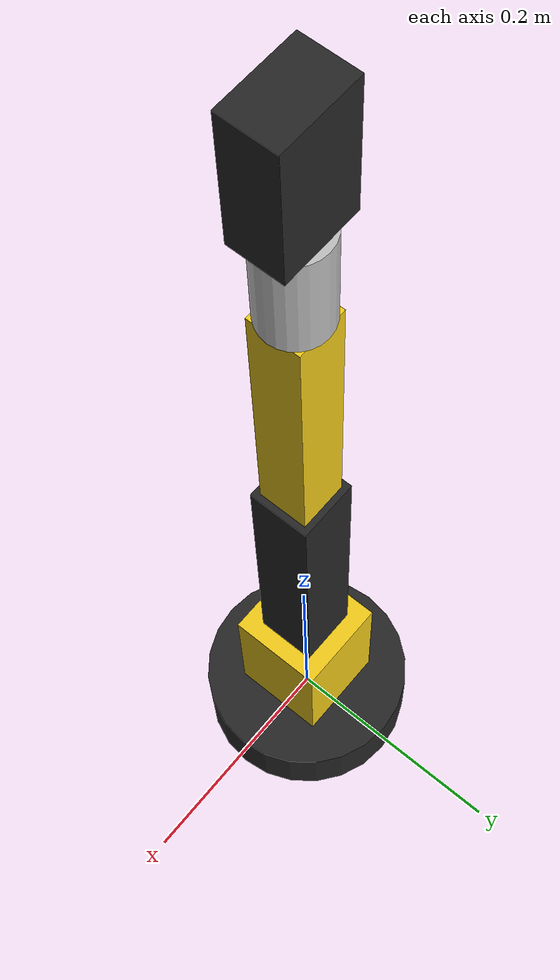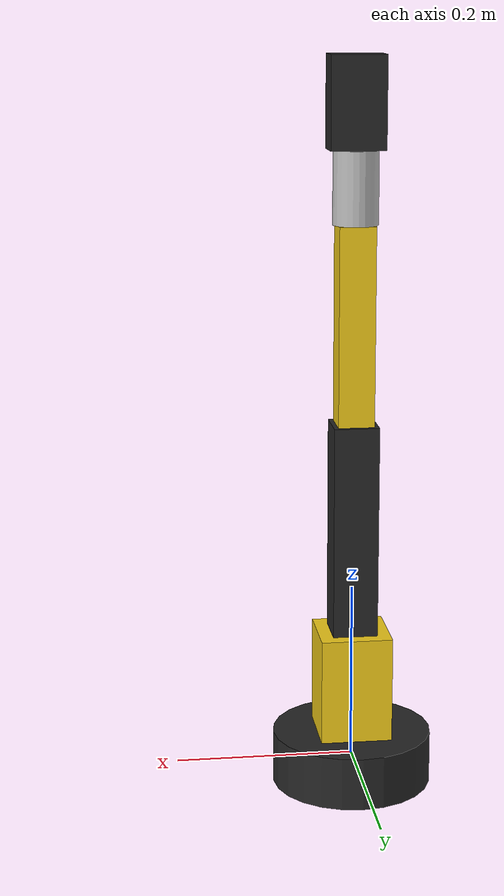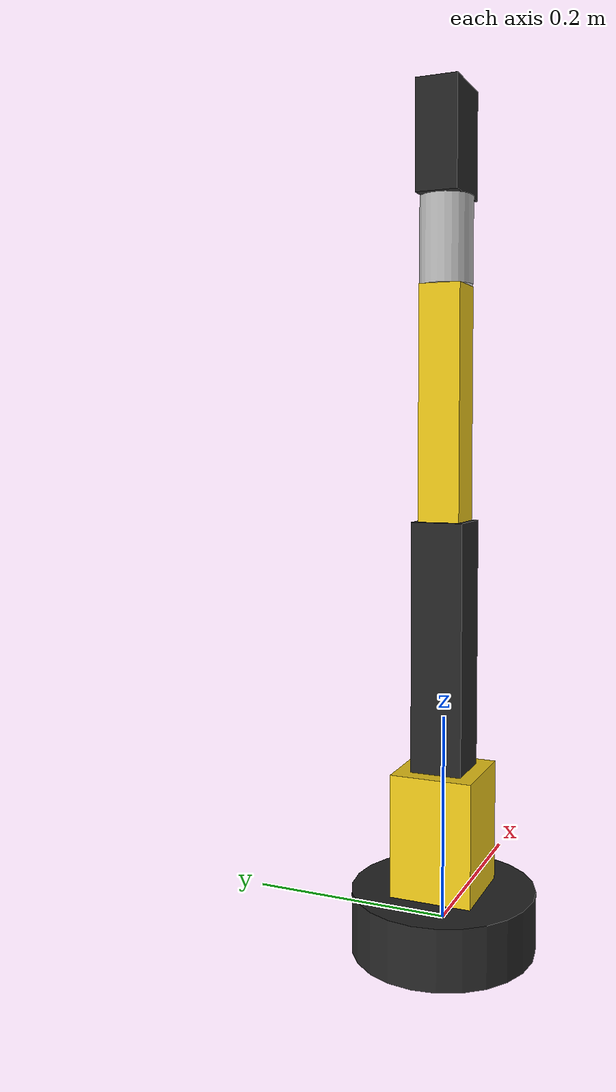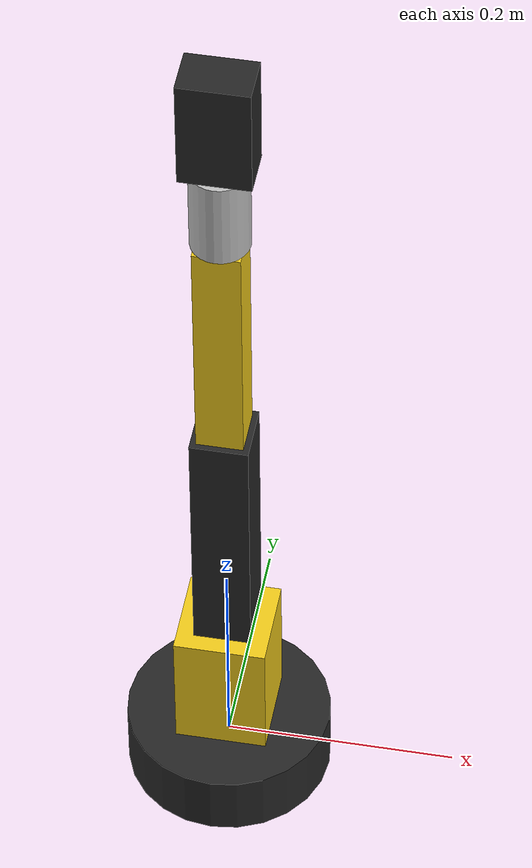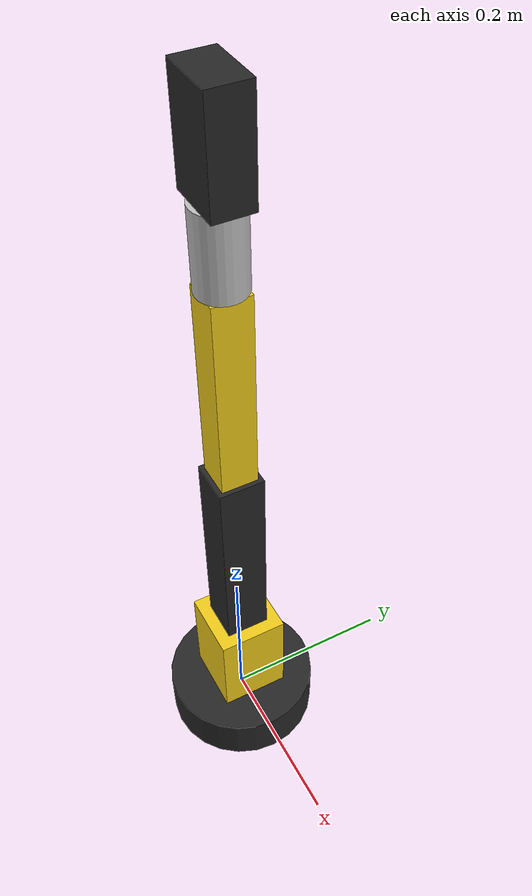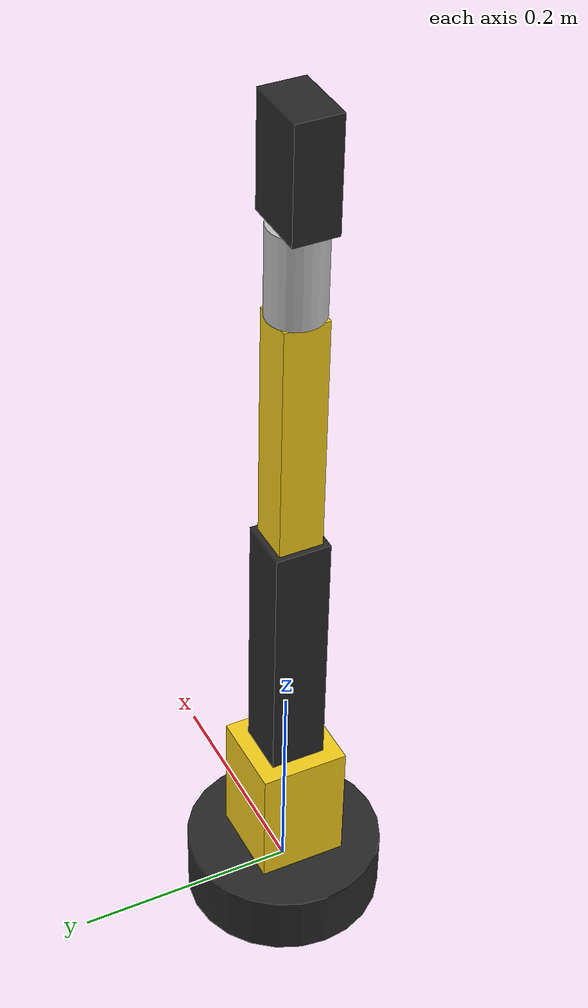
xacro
<?xml version="1.0"?>

<robot xmlns:xacro="http://www.ros.org/wiki/xacro" name="astra_arm">

  <!-- Materials -->

  <material name="black">
    <color rgba="0.15 0.15 0.15 1.0"/>
  </material>

  <material name="yellow">
    <color rgba="0.95 0.80 0.10 1.0"/>
  </material>

  <material name="silver">
    <color rgba="0.75 0.75 0.75 1.0"/>
  </material>

  <!-- Base -->

  <link name="base_link">
    <visual>
      <geometry>
        <cylinder radius="0.09" length="0.06"/>
      </geometry>
      <material name="black"/>
    </visual>

    <collision>
      <geometry>
        <cylinder radius="0.09" length="0.06"/>
      </geometry>
    </collision>

    <inertial>
      <mass value="2.0"/>
      <origin xyz="0 0 0"/>
      <inertia
        ixx="0.02"
        iyy="0.02"
        izz="0.02"
        ixy="0"
        ixz="0"
        iyz="0"/>
    </inertial>
  </link>

  <!-- Shoulder -->

  <link name="shoulder_link">
    <visual>
      <origin xyz="0 0 0.06"/>
      <geometry>
        <box size="0.08 0.08 0.12"/>
      </geometry>
      <material name="yellow"/>
    </visual>
  </link>

  <joint name="shoulder_joint" type="revolute">
    <parent link="base_link"/>
    <child link="shoulder_link"/>
    <origin xyz="0 0 0.03"/>
    <axis xyz="0 0 1"/>
    <limit lower="-3.14" upper="3.14" effort="20" velocity="2"/>
  </joint>

  <!-- Upper Arm -->

  <link name="upper_arm_link">
    <visual>
      <origin xyz="0 0 0.12"/>
      <geometry>
        <box size="0.05 0.05 0.24"/>
      </geometry>
      <material name="black"/>
    </visual>
  </link>

  <joint name="elbow_joint" type="revolute">
    <parent link="shoulder_link"/>
    <child link="upper_arm_link"/>
    <origin xyz="0 0 0.12"/>
    <axis xyz="0 1 0"/>
    <limit lower="-1.57" upper="1.57" effort="20" velocity="2"/>
  </joint>

  <!-- Forearm -->

  <link name="forearm_link">
    <visual>
      <origin xyz="0 0 0.11"/>
      <geometry>
        <box size="0.04 0.04 0.22"/>
      </geometry>
      <material name="yellow"/>
    </visual>
  </link>

  <joint name="wrist_joint" type="revolute">
    <parent link="upper_arm_link"/>
    <child link="forearm_link"/>
    <origin xyz="0 0 0.24"/>
    <axis xyz="0 1 0"/>
    <limit lower="-1.57" upper="1.57" effort="15" velocity="2"/>
  </joint>

  <!-- Wrist -->

  <link name="wrist_link">
    <visual>
      <origin xyz="0 0 0.04"/>
      <geometry>
        <cylinder radius="0.025" length="0.08"/>
      </geometry>
      <material name="silver"/>
    </visual>
  </link>

  <joint name="wrist_roll_joint" type="revolute">
    <parent link="forearm_link"/>
    <child link="wrist_link"/>
    <origin xyz="0 0 0.22"/>
    <axis xyz="0 0 1"/>
    <limit lower="-3.14" upper="3.14" effort="10" velocity="2"/>
  </joint>

  <!-- Gripper -->

  <link name="gripper_link">
    <visual>
      <origin xyz="0 0 0.05"/>
      <geometry>
        <box size="0.06 0.04 0.10"/>
      </geometry>
      <material name="black"/>
    </visual>
  </link>

  <joint name="gripper_joint" type="fixed">
    <parent link="wrist_link"/>
    <child link="gripper_link"/>
    <origin xyz="0 0 0.08"/>
  </joint>

</robot>
